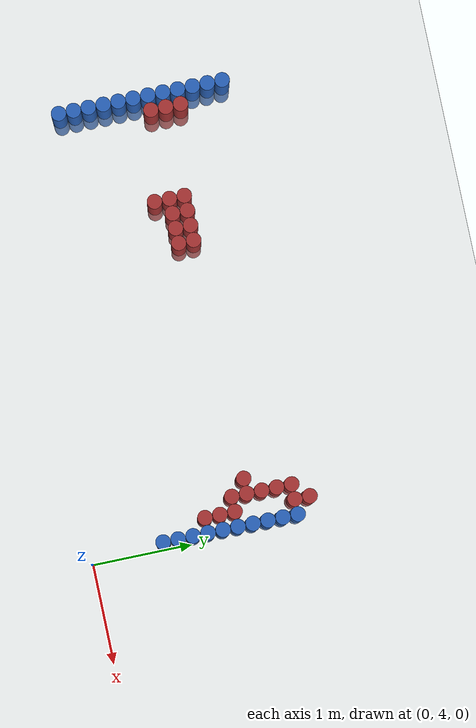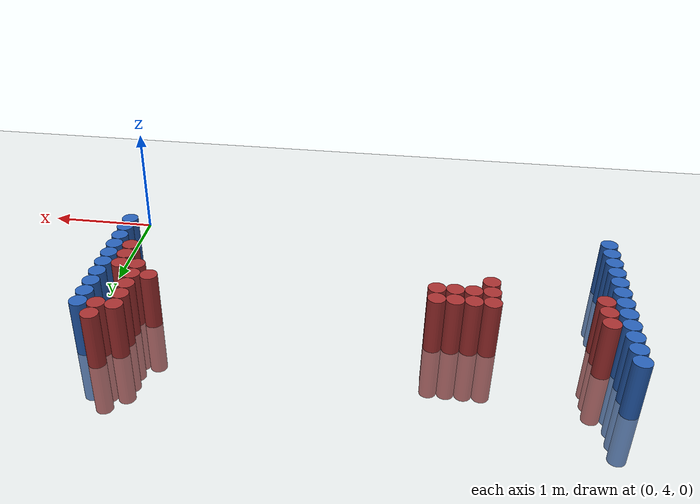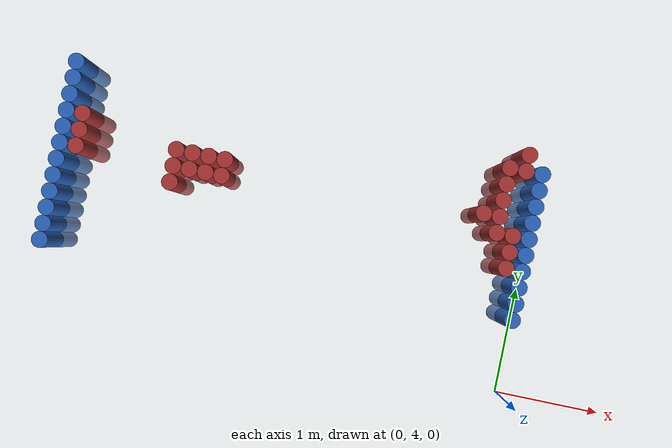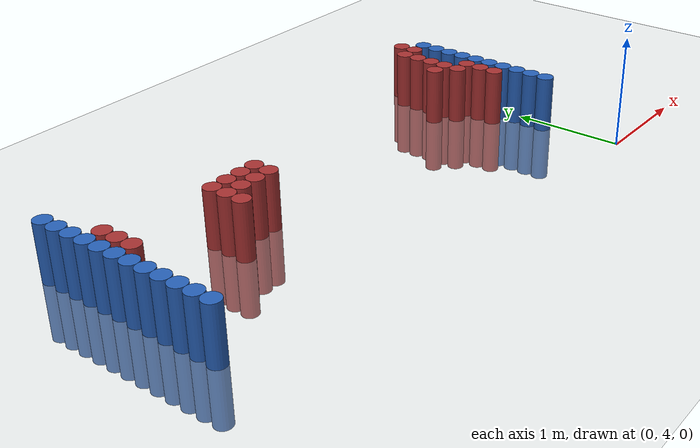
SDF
<sdf version="1.6">
 <world name="default">
  <model name="ground_plane">
   <static>1</static>
   <link name="link">
    <collision name="collision">
     <geometry><plane><normal>0 0 1</normal><size>100 100</size></plane></geometry>
     <surface><friction><ode><mu>100</mu><mu2>50</mu2></ode></friction></surface>
    </collision>
    <visual name="visual">
     <cast_shadows>0</cast_shadows>
     <geometry><plane><normal>0 0 1</normal><size>100 100</size></plane></geometry>
     <material>
      <script><uri>file://media/materials/scripts/gazebo.material</uri><name>Gazebo/Grey</name></script>
     </material>
    </visual>
   </link>
  </model>
  <model name="unit_cylinder_89">
   <static>1</static>
   <pose>-4.425000 4.575000 0.000000 0.000000 0.000000 0.000000</pose>
   <link name="link">
    <inertial>
     <mass>1</mass>
     <inertia><ixx>0.145833</ixx><ixy>0</ixy><ixz>0</ixz><iyy>0.145833</iyy><iyz>0</iyz><izz>0.125</izz></inertia>
    </inertial>
    <collision name="collision">
     <geometry><cylinder><radius>0.075000</radius><length>1</length></cylinder></geometry>
    </collision>
    <visual name="visual">
     <geometry><cylinder><radius>0.075000</radius><length>1</length></cylinder></geometry>
     <material>
      <ambient>0.152000 0.379000 0.720000 1</ambient>
      <diffuse>0.152000 0.379000 0.720000 1</diffuse>
     </material>
     <material>
      <script><name>Gazebo/Grey</name><uri>file://media/materials/scripts/gazebo.material</uri></script>
     </material>
    </visual>
   </link>
  </model>
  <model name="unit_cylinder_90">
   <static>1</static>
   <pose>-0.075000 4.725000 0.000000 0.000000 0.000000 0.000000</pose>
   <link name="link">
    <inertial>
     <mass>1</mass>
     <inertia><ixx>0.145833</ixx><ixy>0</ixy><ixz>0</ixz><iyy>0.145833</iyy><iyz>0</iyz><izz>0.125</izz></inertia>
    </inertial>
    <collision name="collision">
     <geometry><cylinder><radius>0.075000</radius><length>1</length></cylinder></geometry>
    </collision>
    <visual name="visual">
     <geometry><cylinder><radius>0.075000</radius><length>1</length></cylinder></geometry>
     <material>
      <ambient>0.152000 0.379000 0.720000 1</ambient>
      <diffuse>0.152000 0.379000 0.720000 1</diffuse>
     </material>
     <material>
      <script><name>Gazebo/Grey</name><uri>file://media/materials/scripts/gazebo.material</uri></script>
     </material>
    </visual>
   </link>
  </model>
  <model name="unit_cylinder_91">
   <static>1</static>
   <pose>-4.425000 4.725000 0.000000 0.000000 0.000000 0.000000</pose>
   <link name="link">
    <inertial>
     <mass>1</mass>
     <inertia><ixx>0.145833</ixx><ixy>0</ixy><ixz>0</ixz><iyy>0.145833</iyy><iyz>0</iyz><izz>0.125</izz></inertia>
    </inertial>
    <collision name="collision">
     <geometry><cylinder><radius>0.075000</radius><length>1</length></cylinder></geometry>
    </collision>
    <visual name="visual">
     <geometry><cylinder><radius>0.075000</radius><length>1</length></cylinder></geometry>
     <material>
      <ambient>0.152000 0.379000 0.720000 1</ambient>
      <diffuse>0.152000 0.379000 0.720000 1</diffuse>
     </material>
     <material>
      <script><name>Gazebo/Grey</name><uri>file://media/materials/scripts/gazebo.material</uri></script>
     </material>
    </visual>
   </link>
  </model>
  <model name="unit_cylinder_92">
   <static>1</static>
   <pose>-0.075000 4.875000 0.000000 0.000000 0.000000 0.000000</pose>
   <link name="link">
    <inertial>
     <mass>1</mass>
     <inertia><ixx>0.145833</ixx><ixy>0</ixy><ixz>0</ixz><iyy>0.145833</iyy><iyz>0</iyz><izz>0.125</izz></inertia>
    </inertial>
    <collision name="collision">
     <geometry><cylinder><radius>0.075000</radius><length>1</length></cylinder></geometry>
    </collision>
    <visual name="visual">
     <geometry><cylinder><radius>0.075000</radius><length>1</length></cylinder></geometry>
     <material>
      <ambient>0.152000 0.379000 0.720000 1</ambient>
      <diffuse>0.152000 0.379000 0.720000 1</diffuse>
     </material>
     <material>
      <script><name>Gazebo/Grey</name><uri>file://media/materials/scripts/gazebo.material</uri></script>
     </material>
    </visual>
   </link>
  </model>
  <model name="unit_cylinder_93">
   <static>1</static>
   <pose>-4.425000 4.875000 0.000000 0.000000 0.000000 0.000000</pose>
   <link name="link">
    <inertial>
     <mass>1</mass>
     <inertia><ixx>0.145833</ixx><ixy>0</ixy><ixz>0</ixz><iyy>0.145833</iyy><iyz>0</iyz><izz>0.125</izz></inertia>
    </inertial>
    <collision name="collision">
     <geometry><cylinder><radius>0.075000</radius><length>1</length></cylinder></geometry>
    </collision>
    <visual name="visual">
     <geometry><cylinder><radius>0.075000</radius><length>1</length></cylinder></geometry>
     <material>
      <ambient>0.152000 0.379000 0.720000 1</ambient>
      <diffuse>0.152000 0.379000 0.720000 1</diffuse>
     </material>
     <material>
      <script><name>Gazebo/Grey</name><uri>file://media/materials/scripts/gazebo.material</uri></script>
     </material>
    </visual>
   </link>
  </model>
  <model name="unit_cylinder_94">
   <static>1</static>
   <pose>-0.075000 5.025000 0.000000 0.000000 0.000000 0.000000</pose>
   <link name="link">
    <inertial>
     <mass>1</mass>
     <inertia><ixx>0.145833</ixx><ixy>0</ixy><ixz>0</ixz><iyy>0.145833</iyy><iyz>0</iyz><izz>0.125</izz></inertia>
    </inertial>
    <collision name="collision">
     <geometry><cylinder><radius>0.075000</radius><length>1</length></cylinder></geometry>
    </collision>
    <visual name="visual">
     <geometry><cylinder><radius>0.075000</radius><length>1</length></cylinder></geometry>
     <material>
      <ambient>0.152000 0.379000 0.720000 1</ambient>
      <diffuse>0.152000 0.379000 0.720000 1</diffuse>
     </material>
     <material>
      <script><name>Gazebo/Grey</name><uri>file://media/materials/scripts/gazebo.material</uri></script>
     </material>
    </visual>
   </link>
  </model>
  <model name="unit_cylinder_95">
   <static>1</static>
   <pose>-4.425000 5.025000 0.000000 0.000000 0.000000 0.000000</pose>
   <link name="link">
    <inertial>
     <mass>1</mass>
     <inertia><ixx>0.145833</ixx><ixy>0</ixy><ixz>0</ixz><iyy>0.145833</iyy><iyz>0</iyz><izz>0.125</izz></inertia>
    </inertial>
    <collision name="collision">
     <geometry><cylinder><radius>0.075000</radius><length>1</length></cylinder></geometry>
    </collision>
    <visual name="visual">
     <geometry><cylinder><radius>0.075000</radius><length>1</length></cylinder></geometry>
     <material>
      <ambient>0.152000 0.379000 0.720000 1</ambient>
      <diffuse>0.152000 0.379000 0.720000 1</diffuse>
     </material>
     <material>
      <script><name>Gazebo/Grey</name><uri>file://media/materials/scripts/gazebo.material</uri></script>
     </material>
    </visual>
   </link>
  </model>
  <model name="unit_cylinder_96">
   <static>1</static>
   <pose>-4.425000 5.175000 0.000000 0.000000 0.000000 0.000000</pose>
   <link name="link">
    <inertial>
     <mass>1</mass>
     <inertia><ixx>0.145833</ixx><ixy>0</ixy><ixz>0</ixz><iyy>0.145833</iyy><iyz>0</iyz><izz>0.125</izz></inertia>
    </inertial>
    <collision name="collision">
     <geometry><cylinder><radius>0.075000</radius><length>1</length></cylinder></geometry>
    </collision>
    <visual name="visual">
     <geometry><cylinder><radius>0.075000</radius><length>1</length></cylinder></geometry>
     <material>
      <ambient>0.152000 0.379000 0.720000 1</ambient>
      <diffuse>0.152000 0.379000 0.720000 1</diffuse>
     </material>
     <material>
      <script><name>Gazebo/Grey</name><uri>file://media/materials/scripts/gazebo.material</uri></script>
     </material>
    </visual>
   </link>
  </model>
  <model name="unit_cylinder_97">
   <static>1</static>
   <pose>-4.425000 5.325000 0.000000 0.000000 0.000000 0.000000</pose>
   <link name="link">
    <inertial>
     <mass>1</mass>
     <inertia><ixx>0.145833</ixx><ixy>0</ixy><ixz>0</ixz><iyy>0.145833</iyy><iyz>0</iyz><izz>0.125</izz></inertia>
    </inertial>
    <collision name="collision">
     <geometry><cylinder><radius>0.075000</radius><length>1</length></cylinder></geometry>
    </collision>
    <visual name="visual">
     <geometry><cylinder><radius>0.075000</radius><length>1</length></cylinder></geometry>
     <material>
      <ambient>0.152000 0.379000 0.720000 1</ambient>
      <diffuse>0.152000 0.379000 0.720000 1</diffuse>
     </material>
     <material>
      <script><name>Gazebo/Grey</name><uri>file://media/materials/scripts/gazebo.material</uri></script>
     </material>
    </visual>
   </link>
  </model>
  <model name="unit_cylinder_98">
   <static>1</static>
   <pose>-4.425000 5.475000 0.000000 0.000000 0.000000 0.000000</pose>
   <link name="link">
    <inertial>
     <mass>1</mass>
     <inertia><ixx>0.145833</ixx><ixy>0</ixy><ixz>0</ixz><iyy>0.145833</iyy><iyz>0</iyz><izz>0.125</izz></inertia>
    </inertial>
    <collision name="collision">
     <geometry><cylinder><radius>0.075000</radius><length>1</length></cylinder></geometry>
    </collision>
    <visual name="visual">
     <geometry><cylinder><radius>0.075000</radius><length>1</length></cylinder></geometry>
     <material>
      <ambient>0.152000 0.379000 0.720000 1</ambient>
      <diffuse>0.152000 0.379000 0.720000 1</diffuse>
     </material>
     <material>
      <script><name>Gazebo/Grey</name><uri>file://media/materials/scripts/gazebo.material</uri></script>
     </material>
    </visual>
   </link>
  </model>
  <model name="unit_cylinder_99">
   <static>1</static>
   <pose>-4.425000 5.625000 0.000000 0.000000 0.000000 0.000000</pose>
   <link name="link">
    <inertial>
     <mass>1</mass>
     <inertia><ixx>0.145833</ixx><ixy>0</ixy><ixz>0</ixz><iyy>0.145833</iyy><iyz>0</iyz><izz>0.125</izz></inertia>
    </inertial>
    <collision name="collision">
     <geometry><cylinder><radius>0.075000</radius><length>1</length></cylinder></geometry>
    </collision>
    <visual name="visual">
     <geometry><cylinder><radius>0.075000</radius><length>1</length></cylinder></geometry>
     <material>
      <ambient>0.152000 0.379000 0.720000 1</ambient>
      <diffuse>0.152000 0.379000 0.720000 1</diffuse>
     </material>
     <material>
      <script><name>Gazebo/Grey</name><uri>file://media/materials/scripts/gazebo.material</uri></script>
     </material>
    </visual>
   </link>
  </model>
  <model name="unit_cylinder_100">
   <static>1</static>
   <pose>-4.425000 5.775000 0.000000 0.000000 0.000000 0.000000</pose>
   <link name="link">
    <inertial>
     <mass>1</mass>
     <inertia><ixx>0.145833</ixx><ixy>0</ixy><ixz>0</ixz><iyy>0.145833</iyy><iyz>0</iyz><izz>0.125</izz></inertia>
    </inertial>
    <collision name="collision">
     <geometry><cylinder><radius>0.075000</radius><length>1</length></cylinder></geometry>
    </collision>
    <visual name="visual">
     <geometry><cylinder><radius>0.075000</radius><length>1</length></cylinder></geometry>
     <material>
      <ambient>0.152000 0.379000 0.720000 1</ambient>
      <diffuse>0.152000 0.379000 0.720000 1</diffuse>
     </material>
     <material>
      <script><name>Gazebo/Grey</name><uri>file://media/materials/scripts/gazebo.material</uri></script>
     </material>
    </visual>
   </link>
  </model>
  <model name="unit_cylinder_101">
   <static>1</static>
   <pose>-4.425000 5.925000 0.000000 0.000000 0.000000 0.000000</pose>
   <link name="link">
    <inertial>
     <mass>1</mass>
     <inertia><ixx>0.145833</ixx><ixy>0</ixy><ixz>0</ixz><iyy>0.145833</iyy><iyz>0</iyz><izz>0.125</izz></inertia>
    </inertial>
    <collision name="collision">
     <geometry><cylinder><radius>0.075000</radius><length>1</length></cylinder></geometry>
    </collision>
    <visual name="visual">
     <geometry><cylinder><radius>0.075000</radius><length>1</length></cylinder></geometry>
     <material>
      <ambient>0.152000 0.379000 0.720000 1</ambient>
      <diffuse>0.152000 0.379000 0.720000 1</diffuse>
     </material>
     <material>
      <script><name>Gazebo/Grey</name><uri>file://media/materials/scripts/gazebo.material</uri></script>
     </material>
    </visual>
   </link>
  </model>
  <model name="unit_cylinder_102">
   <static>1</static>
   <pose>-4.425000 6.075000 0.000000 0.000000 0.000000 0.000000</pose>
   <link name="link">
    <inertial>
     <mass>1</mass>
     <inertia><ixx>0.145833</ixx><ixy>0</ixy><ixz>0</ixz><iyy>0.145833</iyy><iyz>0</iyz><izz>0.125</izz></inertia>
    </inertial>
    <collision name="collision">
     <geometry><cylinder><radius>0.075000</radius><length>1</length></cylinder></geometry>
    </collision>
    <visual name="visual">
     <geometry><cylinder><radius>0.075000</radius><length>1</length></cylinder></geometry>
     <material>
      <ambient>0.152000 0.379000 0.720000 1</ambient>
      <diffuse>0.152000 0.379000 0.720000 1</diffuse>
     </material>
     <material>
      <script><name>Gazebo/Grey</name><uri>file://media/materials/scripts/gazebo.material</uri></script>
     </material>
    </visual>
   </link>
  </model>
  <model name="unit_cylinder_103">
   <static>1</static>
   <pose>-4.425000 6.225000 0.000000 0.000000 0.000000 0.000000</pose>
   <link name="link">
    <inertial>
     <mass>1</mass>
     <inertia><ixx>0.145833</ixx><ixy>0</ixy><ixz>0</ixz><iyy>0.145833</iyy><iyz>0</iyz><izz>0.125</izz></inertia>
    </inertial>
    <collision name="collision">
     <geometry><cylinder><radius>0.075000</radius><length>1</length></cylinder></geometry>
    </collision>
    <visual name="visual">
     <geometry><cylinder><radius>0.075000</radius><length>1</length></cylinder></geometry>
     <material>
      <ambient>0.152000 0.379000 0.720000 1</ambient>
      <diffuse>0.152000 0.379000 0.720000 1</diffuse>
     </material>
     <material>
      <script><name>Gazebo/Grey</name><uri>file://media/materials/scripts/gazebo.material</uri></script>
     </material>
    </visual>
   </link>
  </model>
  <model name="unit_cylinder_126">
   <static>1</static>
   <pose>-4.275000 5.475000 0.000000 0.000000 0.000000 0.000000</pose>
   <link name="link">
    <inertial>
     <mass>1</mass>
     <inertia><ixx>0.145833</ixx><ixy>0</ixy><ixz>0</ixz><iyy>0.145833</iyy><iyz>0</iyz><izz>0.125</izz></inertia>
    </inertial>
    <collision name="collision">
     <geometry><cylinder><radius>0.075000</radius><length>1</length></cylinder></geometry>
    </collision>
    <visual name="visual">
     <geometry><cylinder><radius>0.075000</radius><length>1</length></cylinder></geometry>
     <material>
      <ambient>0.648000 0.192000 0.192000 1</ambient>
      <diffuse>0.648000 0.192000 0.192000 1</diffuse>
     </material>
     <material>
      <script><name>Gazebo/Grey</name><uri>file://media/materials/scripts/gazebo.material</uri></script>
     </material>
    </visual>
   </link>
  </model>
  <model name="unit_cylinder_127">
   <static>1</static>
   <pose>-4.275000 5.625000 0.000000 0.000000 0.000000 0.000000</pose>
   <link name="link">
    <inertial>
     <mass>1</mass>
     <inertia><ixx>0.145833</ixx><ixy>0</ixy><ixz>0</ixz><iyy>0.145833</iyy><iyz>0</iyz><izz>0.125</izz></inertia>
    </inertial>
    <collision name="collision">
     <geometry><cylinder><radius>0.075000</radius><length>1</length></cylinder></geometry>
    </collision>
    <visual name="visual">
     <geometry><cylinder><radius>0.075000</radius><length>1</length></cylinder></geometry>
     <material>
      <ambient>0.648000 0.192000 0.192000 1</ambient>
      <diffuse>0.648000 0.192000 0.192000 1</diffuse>
     </material>
     <material>
      <script><name>Gazebo/Grey</name><uri>file://media/materials/scripts/gazebo.material</uri></script>
     </material>
    </visual>
   </link>
  </model>
  <model name="unit_cylinder_128">
   <static>1</static>
   <pose>-4.275000 5.775000 0.000000 0.000000 0.000000 0.000000</pose>
   <link name="link">
    <inertial>
     <mass>1</mass>
     <inertia><ixx>0.145833</ixx><ixy>0</ixy><ixz>0</ixz><iyy>0.145833</iyy><iyz>0</iyz><izz>0.125</izz></inertia>
    </inertial>
    <collision name="collision">
     <geometry><cylinder><radius>0.075000</radius><length>1</length></cylinder></geometry>
    </collision>
    <visual name="visual">
     <geometry><cylinder><radius>0.075000</radius><length>1</length></cylinder></geometry>
     <material>
      <ambient>0.648000 0.192000 0.192000 1</ambient>
      <diffuse>0.648000 0.192000 0.192000 1</diffuse>
     </material>
     <material>
      <script><name>Gazebo/Grey</name><uri>file://media/materials/scripts/gazebo.material</uri></script>
     </material>
    </visual>
   </link>
  </model>
  <model name="unit_cylinder_134">
   <static>1</static>
   <pose>-3.375000 5.325000 0.000000 0.000000 0.000000 0.000000</pose>
   <link name="link">
    <inertial>
     <mass>1</mass>
     <inertia><ixx>0.145833</ixx><ixy>0</ixy><ixz>0</ixz><iyy>0.145833</iyy><iyz>0</iyz><izz>0.125</izz></inertia>
    </inertial>
    <collision name="collision">
     <geometry><cylinder><radius>0.075000</radius><length>1</length></cylinder></geometry>
    </collision>
    <visual name="visual">
     <geometry><cylinder><radius>0.075000</radius><length>1</length></cylinder></geometry>
     <material>
      <ambient>0.648000 0.192000 0.192000 1</ambient>
      <diffuse>0.648000 0.192000 0.192000 1</diffuse>
     </material>
     <material>
      <script><name>Gazebo/Grey</name><uri>file://media/materials/scripts/gazebo.material</uri></script>
     </material>
    </visual>
   </link>
  </model>
  <model name="unit_cylinder_135">
   <static>1</static>
   <pose>-3.375000 5.475000 0.000000 0.000000 0.000000 0.000000</pose>
   <link name="link">
    <inertial>
     <mass>1</mass>
     <inertia><ixx>0.145833</ixx><ixy>0</ixy><ixz>0</ixz><iyy>0.145833</iyy><iyz>0</iyz><izz>0.125</izz></inertia>
    </inertial>
    <collision name="collision">
     <geometry><cylinder><radius>0.075000</radius><length>1</length></cylinder></geometry>
    </collision>
    <visual name="visual">
     <geometry><cylinder><radius>0.075000</radius><length>1</length></cylinder></geometry>
     <material>
      <ambient>0.648000 0.192000 0.192000 1</ambient>
      <diffuse>0.648000 0.192000 0.192000 1</diffuse>
     </material>
     <material>
      <script><name>Gazebo/Grey</name><uri>file://media/materials/scripts/gazebo.material</uri></script>
     </material>
    </visual>
   </link>
  </model>
  <model name="unit_cylinder_136">
   <static>1</static>
   <pose>-3.375000 5.625000 0.000000 0.000000 0.000000 0.000000</pose>
   <link name="link">
    <inertial>
     <mass>1</mass>
     <inertia><ixx>0.145833</ixx><ixy>0</ixy><ixz>0</ixz><iyy>0.145833</iyy><iyz>0</iyz><izz>0.125</izz></inertia>
    </inertial>
    <collision name="collision">
     <geometry><cylinder><radius>0.075000</radius><length>1</length></cylinder></geometry>
    </collision>
    <visual name="visual">
     <geometry><cylinder><radius>0.075000</radius><length>1</length></cylinder></geometry>
     <material>
      <ambient>0.648000 0.192000 0.192000 1</ambient>
      <diffuse>0.648000 0.192000 0.192000 1</diffuse>
     </material>
     <material>
      <script><name>Gazebo/Grey</name><uri>file://media/materials/scripts/gazebo.material</uri></script>
     </material>
    </visual>
   </link>
  </model>
  <model name="unit_cylinder_138">
   <static>1</static>
   <pose>-3.225000 5.475000 0.000000 0.000000 0.000000 0.000000</pose>
   <link name="link">
    <inertial>
     <mass>1</mass>
     <inertia><ixx>0.145833</ixx><ixy>0</ixy><ixz>0</ixz><iyy>0.145833</iyy><iyz>0</iyz><izz>0.125</izz></inertia>
    </inertial>
    <collision name="collision">
     <geometry><cylinder><radius>0.075000</radius><length>1</length></cylinder></geometry>
    </collision>
    <visual name="visual">
     <geometry><cylinder><radius>0.075000</radius><length>1</length></cylinder></geometry>
     <material>
      <ambient>0.648000 0.192000 0.192000 1</ambient>
      <diffuse>0.648000 0.192000 0.192000 1</diffuse>
     </material>
     <material>
      <script><name>Gazebo/Grey</name><uri>file://media/materials/scripts/gazebo.material</uri></script>
     </material>
    </visual>
   </link>
  </model>
  <model name="unit_cylinder_139">
   <static>1</static>
   <pose>-3.225000 5.625000 0.000000 0.000000 0.000000 0.000000</pose>
   <link name="link">
    <inertial>
     <mass>1</mass>
     <inertia><ixx>0.145833</ixx><ixy>0</ixy><ixz>0</ixz><iyy>0.145833</iyy><iyz>0</iyz><izz>0.125</izz></inertia>
    </inertial>
    <collision name="collision">
     <geometry><cylinder><radius>0.075000</radius><length>1</length></cylinder></geometry>
    </collision>
    <visual name="visual">
     <geometry><cylinder><radius>0.075000</radius><length>1</length></cylinder></geometry>
     <material>
      <ambient>0.648000 0.192000 0.192000 1</ambient>
      <diffuse>0.648000 0.192000 0.192000 1</diffuse>
     </material>
     <material>
      <script><name>Gazebo/Grey</name><uri>file://media/materials/scripts/gazebo.material</uri></script>
     </material>
    </visual>
   </link>
  </model>
  <model name="unit_cylinder_142">
   <static>1</static>
   <pose>-3.075000 5.475000 0.000000 0.000000 0.000000 0.000000</pose>
   <link name="link">
    <inertial>
     <mass>1</mass>
     <inertia><ixx>0.145833</ixx><ixy>0</ixy><ixz>0</ixz><iyy>0.145833</iyy><iyz>0</iyz><izz>0.125</izz></inertia>
    </inertial>
    <collision name="collision">
     <geometry><cylinder><radius>0.075000</radius><length>1</length></cylinder></geometry>
    </collision>
    <visual name="visual">
     <geometry><cylinder><radius>0.075000</radius><length>1</length></cylinder></geometry>
     <material>
      <ambient>0.648000 0.192000 0.192000 1</ambient>
      <diffuse>0.648000 0.192000 0.192000 1</diffuse>
     </material>
     <material>
      <script><name>Gazebo/Grey</name><uri>file://media/materials/scripts/gazebo.material</uri></script>
     </material>
    </visual>
   </link>
  </model>
  <model name="unit_cylinder_143">
   <static>1</static>
   <pose>-3.075000 5.625000 0.000000 0.000000 0.000000 0.000000</pose>
   <link name="link">
    <inertial>
     <mass>1</mass>
     <inertia><ixx>0.145833</ixx><ixy>0</ixy><ixz>0</ixz><iyy>0.145833</iyy><iyz>0</iyz><izz>0.125</izz></inertia>
    </inertial>
    <collision name="collision">
     <geometry><cylinder><radius>0.075000</radius><length>1</length></cylinder></geometry>
    </collision>
    <visual name="visual">
     <geometry><cylinder><radius>0.075000</radius><length>1</length></cylinder></geometry>
     <material>
      <ambient>0.648000 0.192000 0.192000 1</ambient>
      <diffuse>0.648000 0.192000 0.192000 1</diffuse>
     </material>
     <material>
      <script><name>Gazebo/Grey</name><uri>file://media/materials/scripts/gazebo.material</uri></script>
     </material>
    </visual>
   </link>
  </model>
  <model name="unit_cylinder_144">
   <static>1</static>
   <pose>-2.925000 5.475000 0.000000 0.000000 0.000000 0.000000</pose>
   <link name="link">
    <inertial>
     <mass>1</mass>
     <inertia><ixx>0.145833</ixx><ixy>0</ixy><ixz>0</ixz><iyy>0.145833</iyy><iyz>0</iyz><izz>0.125</izz></inertia>
    </inertial>
    <collision name="collision">
     <geometry><cylinder><radius>0.075000</radius><length>1</length></cylinder></geometry>
    </collision>
    <visual name="visual">
     <geometry><cylinder><radius>0.075000</radius><length>1</length></cylinder></geometry>
     <material>
      <ambient>0.648000 0.192000 0.192000 1</ambient>
      <diffuse>0.648000 0.192000 0.192000 1</diffuse>
     </material>
     <material>
      <script><name>Gazebo/Grey</name><uri>file://media/materials/scripts/gazebo.material</uri></script>
     </material>
    </visual>
   </link>
  </model>
  <model name="unit_cylinder_145">
   <static>1</static>
   <pose>-2.925000 5.625000 0.000000 0.000000 0.000000 0.000000</pose>
   <link name="link">
    <inertial>
     <mass>1</mass>
     <inertia><ixx>0.145833</ixx><ixy>0</ixy><ixz>0</ixz><iyy>0.145833</iyy><iyz>0</iyz><izz>0.125</izz></inertia>
    </inertial>
    <collision name="collision">
     <geometry><cylinder><radius>0.075000</radius><length>1</length></cylinder></geometry>
    </collision>
    <visual name="visual">
     <geometry><cylinder><radius>0.075000</radius><length>1</length></cylinder></geometry>
     <material>
      <ambient>0.648000 0.192000 0.192000 1</ambient>
      <diffuse>0.648000 0.192000 0.192000 1</diffuse>
     </material>
     <material>
      <script><name>Gazebo/Grey</name><uri>file://media/materials/scripts/gazebo.material</uri></script>
     </material>
    </visual>
   </link>
  </model>
  <model name="unit_cylinder_167">
   <static>1</static>
   <pose>-0.525000 5.625000 0.000000 0.000000 0.000000 0.000000</pose>
   <link name="link">
    <inertial>
     <mass>1</mass>
     <inertia><ixx>0.145833</ixx><ixy>0</ixy><ixz>0</ixz><iyy>0.145833</iyy><iyz>0</iyz><izz>0.125</izz></inertia>
    </inertial>
    <collision name="collision">
     <geometry><cylinder><radius>0.075000</radius><length>1</length></cylinder></geometry>
    </collision>
    <visual name="visual">
     <geometry><cylinder><radius>0.075000</radius><length>1</length></cylinder></geometry>
     <material>
      <ambient>0.648000 0.192000 0.192000 1</ambient>
      <diffuse>0.648000 0.192000 0.192000 1</diffuse>
     </material>
     <material>
      <script><name>Gazebo/Grey</name><uri>file://media/materials/scripts/gazebo.material</uri></script>
     </material>
    </visual>
   </link>
  </model>
  <model name="unit_cylinder_169">
   <static>1</static>
   <pose>-0.375000 5.475000 0.000000 0.000000 0.000000 0.000000</pose>
   <link name="link">
    <inertial>
     <mass>1</mass>
     <inertia><ixx>0.145833</ixx><ixy>0</ixy><ixz>0</ixz><iyy>0.145833</iyy><iyz>0</iyz><izz>0.125</izz></inertia>
    </inertial>
    <collision name="collision">
     <geometry><cylinder><radius>0.075000</radius><length>1</length></cylinder></geometry>
    </collision>
    <visual name="visual">
     <geometry><cylinder><radius>0.075000</radius><length>1</length></cylinder></geometry>
     <material>
      <ambient>0.648000 0.192000 0.192000 1</ambient>
      <diffuse>0.648000 0.192000 0.192000 1</diffuse>
     </material>
     <material>
      <script><name>Gazebo/Grey</name><uri>file://media/materials/scripts/gazebo.material</uri></script>
     </material>
    </visual>
   </link>
  </model>
  <model name="unit_cylinder_170">
   <static>1</static>
   <pose>-0.375000 5.625000 0.000000 0.000000 0.000000 0.000000</pose>
   <link name="link">
    <inertial>
     <mass>1</mass>
     <inertia><ixx>0.145833</ixx><ixy>0</ixy><ixz>0</ixz><iyy>0.145833</iyy><iyz>0</iyz><izz>0.125</izz></inertia>
    </inertial>
    <collision name="collision">
     <geometry><cylinder><radius>0.075000</radius><length>1</length></cylinder></geometry>
    </collision>
    <visual name="visual">
     <geometry><cylinder><radius>0.075000</radius><length>1</length></cylinder></geometry>
     <material>
      <ambient>0.648000 0.192000 0.192000 1</ambient>
      <diffuse>0.648000 0.192000 0.192000 1</diffuse>
     </material>
     <material>
      <script><name>Gazebo/Grey</name><uri>file://media/materials/scripts/gazebo.material</uri></script>
     </material>
    </visual>
   </link>
  </model>
  <model name="unit_cylinder_171">
   <static>1</static>
   <pose>-0.375000 5.775000 0.000000 0.000000 0.000000 0.000000</pose>
   <link name="link">
    <inertial>
     <mass>1</mass>
     <inertia><ixx>0.145833</ixx><ixy>0</ixy><ixz>0</ixz><iyy>0.145833</iyy><iyz>0</iyz><izz>0.125</izz></inertia>
    </inertial>
    <collision name="collision">
     <geometry><cylinder><radius>0.075000</radius><length>1</length></cylinder></geometry>
    </collision>
    <visual name="visual">
     <geometry><cylinder><radius>0.075000</radius><length>1</length></cylinder></geometry>
     <material>
      <ambient>0.648000 0.192000 0.192000 1</ambient>
      <diffuse>0.648000 0.192000 0.192000 1</diffuse>
     </material>
     <material>
      <script><name>Gazebo/Grey</name><uri>file://media/materials/scripts/gazebo.material</uri></script>
     </material>
    </visual>
   </link>
  </model>
  <model name="unit_cylinder_172">
   <static>1</static>
   <pose>-0.375000 5.925000 0.000000 0.000000 0.000000 0.000000</pose>
   <link name="link">
    <inertial>
     <mass>1</mass>
     <inertia><ixx>0.145833</ixx><ixy>0</ixy><ixz>0</ixz><iyy>0.145833</iyy><iyz>0</iyz><izz>0.125</izz></inertia>
    </inertial>
    <collision name="collision">
     <geometry><cylinder><radius>0.075000</radius><length>1</length></cylinder></geometry>
    </collision>
    <visual name="visual">
     <geometry><cylinder><radius>0.075000</radius><length>1</length></cylinder></geometry>
     <material>
      <ambient>0.648000 0.192000 0.192000 1</ambient>
      <diffuse>0.648000 0.192000 0.192000 1</diffuse>
     </material>
     <material>
      <script><name>Gazebo/Grey</name><uri>file://media/materials/scripts/gazebo.material</uri></script>
     </material>
    </visual>
   </link>
  </model>
  <model name="unit_cylinder_173">
   <static>1</static>
   <pose>-0.375000 6.075000 0.000000 0.000000 0.000000 0.000000</pose>
   <link name="link">
    <inertial>
     <mass>1</mass>
     <inertia><ixx>0.145833</ixx><ixy>0</ixy><ixz>0</ixz><iyy>0.145833</iyy><iyz>0</iyz><izz>0.125</izz></inertia>
    </inertial>
    <collision name="collision">
     <geometry><cylinder><radius>0.075000</radius><length>1</length></cylinder></geometry>
    </collision>
    <visual name="visual">
     <geometry><cylinder><radius>0.075000</radius><length>1</length></cylinder></geometry>
     <material>
      <ambient>0.648000 0.192000 0.192000 1</ambient>
      <diffuse>0.648000 0.192000 0.192000 1</diffuse>
     </material>
     <material>
      <script><name>Gazebo/Grey</name><uri>file://media/materials/scripts/gazebo.material</uri></script>
     </material>
    </visual>
   </link>
  </model>
  <model name="unit_cylinder_176">
   <static>1</static>
   <pose>-0.225000 5.175000 0.000000 0.000000 0.000000 0.000000</pose>
   <link name="link">
    <inertial>
     <mass>1</mass>
     <inertia><ixx>0.145833</ixx><ixy>0</ixy><ixz>0</ixz><iyy>0.145833</iyy><iyz>0</iyz><izz>0.125</izz></inertia>
    </inertial>
    <collision name="collision">
     <geometry><cylinder><radius>0.075000</radius><length>1</length></cylinder></geometry>
    </collision>
    <visual name="visual">
     <geometry><cylinder><radius>0.075000</radius><length>1</length></cylinder></geometry>
     <material>
      <ambient>0.648000 0.192000 0.192000 1</ambient>
      <diffuse>0.648000 0.192000 0.192000 1</diffuse>
     </material>
     <material>
      <script><name>Gazebo/Grey</name><uri>file://media/materials/scripts/gazebo.material</uri></script>
     </material>
    </visual>
   </link>
  </model>
  <model name="unit_cylinder_177">
   <static>1</static>
   <pose>-0.225000 5.325000 0.000000 0.000000 0.000000 0.000000</pose>
   <link name="link">
    <inertial>
     <mass>1</mass>
     <inertia><ixx>0.145833</ixx><ixy>0</ixy><ixz>0</ixz><iyy>0.145833</iyy><iyz>0</iyz><izz>0.125</izz></inertia>
    </inertial>
    <collision name="collision">
     <geometry><cylinder><radius>0.075000</radius><length>1</length></cylinder></geometry>
    </collision>
    <visual name="visual">
     <geometry><cylinder><radius>0.075000</radius><length>1</length></cylinder></geometry>
     <material>
      <ambient>0.648000 0.192000 0.192000 1</ambient>
      <diffuse>0.648000 0.192000 0.192000 1</diffuse>
     </material>
     <material>
      <script><name>Gazebo/Grey</name><uri>file://media/materials/scripts/gazebo.material</uri></script>
     </material>
    </visual>
   </link>
  </model>
  <model name="unit_cylinder_178">
   <static>1</static>
   <pose>-0.225000 5.475000 0.000000 0.000000 0.000000 0.000000</pose>
   <link name="link">
    <inertial>
     <mass>1</mass>
     <inertia><ixx>0.145833</ixx><ixy>0</ixy><ixz>0</ixz><iyy>0.145833</iyy><iyz>0</iyz><izz>0.125</izz></inertia>
    </inertial>
    <collision name="collision">
     <geometry><cylinder><radius>0.075000</radius><length>1</length></cylinder></geometry>
    </collision>
    <visual name="visual">
     <geometry><cylinder><radius>0.075000</radius><length>1</length></cylinder></geometry>
     <material>
      <ambient>0.648000 0.192000 0.192000 1</ambient>
      <diffuse>0.648000 0.192000 0.192000 1</diffuse>
     </material>
     <material>
      <script><name>Gazebo/Grey</name><uri>file://media/materials/scripts/gazebo.material</uri></script>
     </material>
    </visual>
   </link>
  </model>
  <model name="unit_cylinder_179">
   <static>1</static>
   <pose>-0.225000 6.075000 0.000000 0.000000 0.000000 0.000000</pose>
   <link name="link">
    <inertial>
     <mass>1</mass>
     <inertia><ixx>0.145833</ixx><ixy>0</ixy><ixz>0</ixz><iyy>0.145833</iyy><iyz>0</iyz><izz>0.125</izz></inertia>
    </inertial>
    <collision name="collision">
     <geometry><cylinder><radius>0.075000</radius><length>1</length></cylinder></geometry>
    </collision>
    <visual name="visual">
     <geometry><cylinder><radius>0.075000</radius><length>1</length></cylinder></geometry>
     <material>
      <ambient>0.648000 0.192000 0.192000 1</ambient>
      <diffuse>0.648000 0.192000 0.192000 1</diffuse>
     </material>
     <material>
      <script><name>Gazebo/Grey</name><uri>file://media/materials/scripts/gazebo.material</uri></script>
     </material>
    </visual>
   </link>
  </model>
  <model name="unit_cylinder_180">
   <static>1</static>
   <pose>-0.225000 6.225000 0.000000 0.000000 0.000000 0.000000</pose>
   <link name="link">
    <inertial>
     <mass>1</mass>
     <inertia><ixx>0.145833</ixx><ixy>0</ixy><ixz>0</ixz><iyy>0.145833</iyy><iyz>0</iyz><izz>0.125</izz></inertia>
    </inertial>
    <collision name="collision">
     <geometry><cylinder><radius>0.075000</radius><length>1</length></cylinder></geometry>
    </collision>
    <visual name="visual">
     <geometry><cylinder><radius>0.075000</radius><length>1</length></cylinder></geometry>
     <material>
      <ambient>0.648000 0.192000 0.192000 1</ambient>
      <diffuse>0.648000 0.192000 0.192000 1</diffuse>
     </material>
     <material>
      <script><name>Gazebo/Grey</name><uri>file://media/materials/scripts/gazebo.material</uri></script>
     </material>
    </visual>
   </link>
  </model>
  <model name="unit_cylinder_193">
   <static>1</static>
   <pose>-0.075000 5.175000 0.000000 0.000000 0.000000 0.000000</pose>
   <link name="link">
    <inertial>
     <mass>1</mass>
     <inertia><ixx>0.145833</ixx><ixy>0</ixy><ixz>0</ixz><iyy>0.145833</iyy><iyz>0</iyz><izz>0.125</izz></inertia>
    </inertial>
    <collision name="collision">
     <geometry><cylinder><radius>0.075000</radius><length>1</length></cylinder></geometry>
    </collision>
    <visual name="visual">
     <geometry><cylinder><radius>0.075000</radius><length>1</length></cylinder></geometry>
     <material>
      <ambient>0.152000 0.379000 0.720000 1</ambient>
      <diffuse>0.152000 0.379000 0.720000 1</diffuse>
     </material>
     <material>
      <script><name>Gazebo/Grey</name><uri>file://media/materials/scripts/gazebo.material</uri></script>
     </material>
    </visual>
   </link>
  </model>
  <model name="unit_cylinder_194">
   <static>1</static>
   <pose>-0.075000 5.325000 0.000000 0.000000 0.000000 0.000000</pose>
   <link name="link">
    <inertial>
     <mass>1</mass>
     <inertia><ixx>0.145833</ixx><ixy>0</ixy><ixz>0</ixz><iyy>0.145833</iyy><iyz>0</iyz><izz>0.125</izz></inertia>
    </inertial>
    <collision name="collision">
     <geometry><cylinder><radius>0.075000</radius><length>1</length></cylinder></geometry>
    </collision>
    <visual name="visual">
     <geometry><cylinder><radius>0.075000</radius><length>1</length></cylinder></geometry>
     <material>
      <ambient>0.152000 0.379000 0.720000 1</ambient>
      <diffuse>0.152000 0.379000 0.720000 1</diffuse>
     </material>
     <material>
      <script><name>Gazebo/Grey</name><uri>file://media/materials/scripts/gazebo.material</uri></script>
     </material>
    </visual>
   </link>
  </model>
  <model name="unit_cylinder_195">
   <static>1</static>
   <pose>-0.075000 5.475000 0.000000 0.000000 0.000000 0.000000</pose>
   <link name="link">
    <inertial>
     <mass>1</mass>
     <inertia><ixx>0.145833</ixx><ixy>0</ixy><ixz>0</ixz><iyy>0.145833</iyy><iyz>0</iyz><izz>0.125</izz></inertia>
    </inertial>
    <collision name="collision">
     <geometry><cylinder><radius>0.075000</radius><length>1</length></cylinder></geometry>
    </collision>
    <visual name="visual">
     <geometry><cylinder><radius>0.075000</radius><length>1</length></cylinder></geometry>
     <material>
      <ambient>0.152000 0.379000 0.720000 1</ambient>
      <diffuse>0.152000 0.379000 0.720000 1</diffuse>
     </material>
     <material>
      <script><name>Gazebo/Grey</name><uri>file://media/materials/scripts/gazebo.material</uri></script>
     </material>
    </visual>
   </link>
  </model>
  <model name="unit_cylinder_196">
   <static>1</static>
   <pose>-0.075000 5.625000 0.000000 0.000000 0.000000 0.000000</pose>
   <link name="link">
    <inertial>
     <mass>1</mass>
     <inertia><ixx>0.145833</ixx><ixy>0</ixy><ixz>0</ixz><iyy>0.145833</iyy><iyz>0</iyz><izz>0.125</izz></inertia>
    </inertial>
    <collision name="collision">
     <geometry><cylinder><radius>0.075000</radius><length>1</length></cylinder></geometry>
    </collision>
    <visual name="visual">
     <geometry><cylinder><radius>0.075000</radius><length>1</length></cylinder></geometry>
     <material>
      <ambient>0.152000 0.379000 0.720000 1</ambient>
      <diffuse>0.152000 0.379000 0.720000 1</diffuse>
     </material>
     <material>
      <script><name>Gazebo/Grey</name><uri>file://media/materials/scripts/gazebo.material</uri></script>
     </material>
    </visual>
   </link>
  </model>
  <model name="unit_cylinder_197">
   <static>1</static>
   <pose>-0.075000 5.775000 0.000000 0.000000 0.000000 0.000000</pose>
   <link name="link">
    <inertial>
     <mass>1</mass>
     <inertia><ixx>0.145833</ixx><ixy>0</ixy><ixz>0</ixz><iyy>0.145833</iyy><iyz>0</iyz><izz>0.125</izz></inertia>
    </inertial>
    <collision name="collision">
     <geometry><cylinder><radius>0.075000</radius><length>1</length></cylinder></geometry>
    </collision>
    <visual name="visual">
     <geometry><cylinder><radius>0.075000</radius><length>1</length></cylinder></geometry>
     <material>
      <ambient>0.152000 0.379000 0.720000 1</ambient>
      <diffuse>0.152000 0.379000 0.720000 1</diffuse>
     </material>
     <material>
      <script><name>Gazebo/Grey</name><uri>file://media/materials/scripts/gazebo.material</uri></script>
     </material>
    </visual>
   </link>
  </model>
  <model name="unit_cylinder_198">
   <static>1</static>
   <pose>-0.075000 5.925000 0.000000 0.000000 0.000000 0.000000</pose>
   <link name="link">
    <inertial>
     <mass>1</mass>
     <inertia><ixx>0.145833</ixx><ixy>0</ixy><ixz>0</ixz><iyy>0.145833</iyy><iyz>0</iyz><izz>0.125</izz></inertia>
    </inertial>
    <collision name="collision">
     <geometry><cylinder><radius>0.075000</radius><length>1</length></cylinder></geometry>
    </collision>
    <visual name="visual">
     <geometry><cylinder><radius>0.075000</radius><length>1</length></cylinder></geometry>
     <material>
      <ambient>0.152000 0.379000 0.720000 1</ambient>
      <diffuse>0.152000 0.379000 0.720000 1</diffuse>
     </material>
     <material>
      <script><name>Gazebo/Grey</name><uri>file://media/materials/scripts/gazebo.material</uri></script>
     </material>
    </visual>
   </link>
  </model>
  <model name="unit_cylinder_199">
   <static>1</static>
   <pose>-0.075000 6.075000 0.000000 0.000000 0.000000 0.000000</pose>
   <link name="link">
    <inertial>
     <mass>1</mass>
     <inertia><ixx>0.145833</ixx><ixy>0</ixy><ixz>0</ixz><iyy>0.145833</iyy><iyz>0</iyz><izz>0.125</izz></inertia>
    </inertial>
    <collision name="collision">
     <geometry><cylinder><radius>0.075000</radius><length>1</length></cylinder></geometry>
    </collision>
    <visual name="visual">
     <geometry><cylinder><radius>0.075000</radius><length>1</length></cylinder></geometry>
     <material>
      <ambient>0.152000 0.379000 0.720000 1</ambient>
      <diffuse>0.152000 0.379000 0.720000 1</diffuse>
     </material>
     <material>
      <script><name>Gazebo/Grey</name><uri>file://media/materials/scripts/gazebo.material</uri></script>
     </material>
    </visual>
   </link>
  </model>
 </world>
</sdf>
